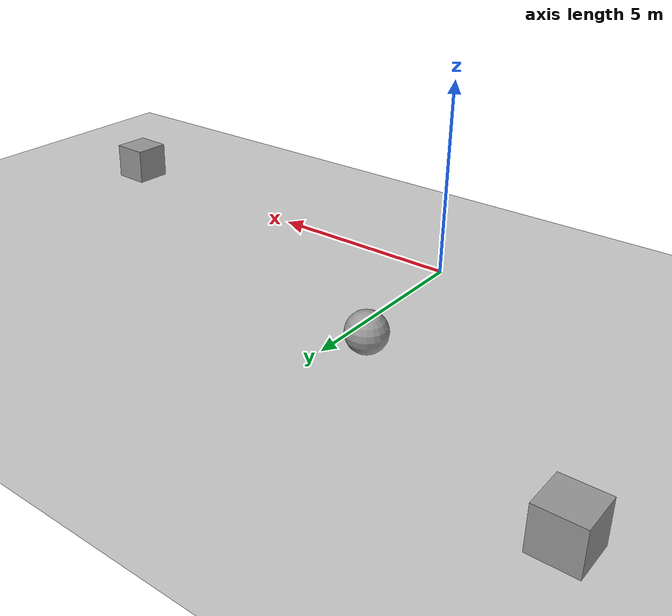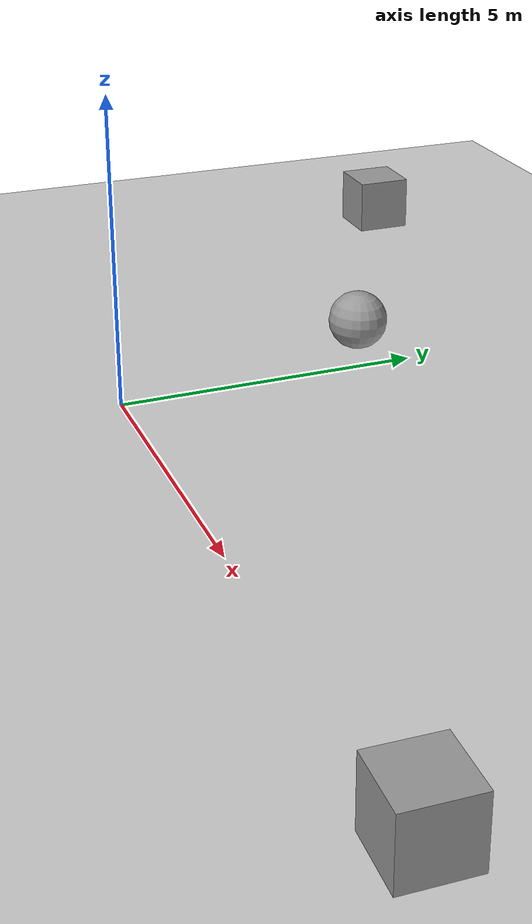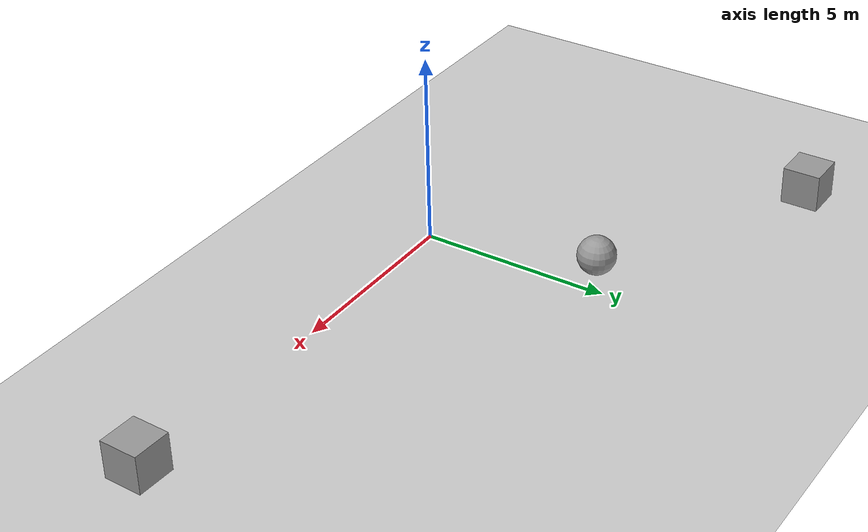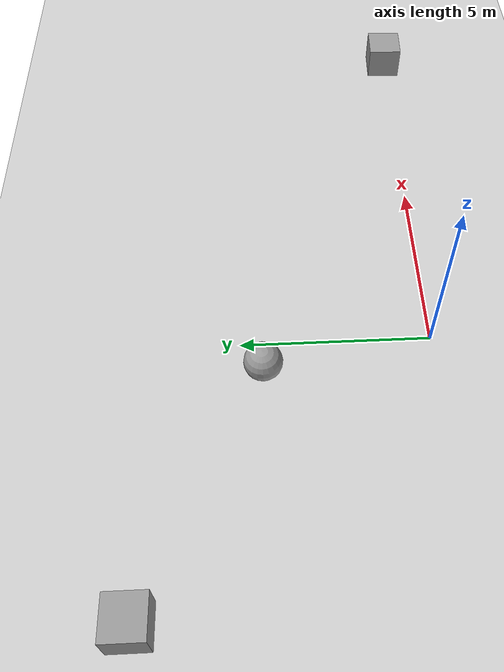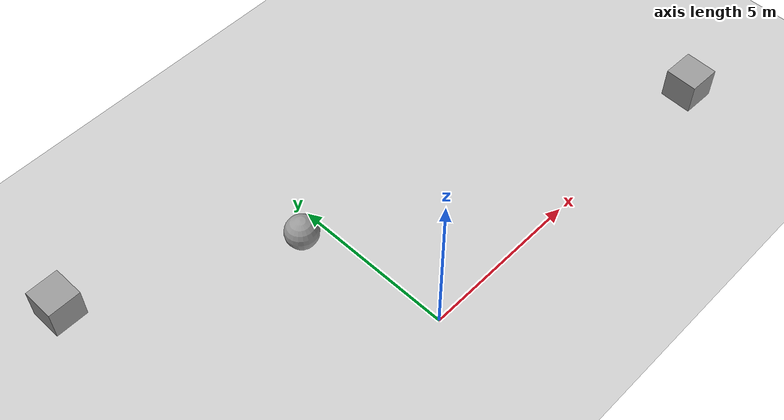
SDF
<sdf version="1.7">
 <world name="default">
  <light name="sun" type="directional">
   <pose>0 0 10 0 -0 0</pose>
   <diffuse>0.8 0.8 0.8 1</diffuse>
   <specular>0.2 0.2 0.2 1</specular>
   <attenuation>
    <range>1000</range>
    <constant>0.9</constant>
    <linear>0.01</linear>
    <quadratic>0.001</quadratic>
   </attenuation>
   <direction>-0.5 0.1 -0.9</direction>
   <spot><inner_angle>0</inner_angle><outer_angle>0</outer_angle><falloff>0</falloff></spot>
  </light>
  <model name="ground_plane">
   <static>1</static>
   <link name="link">
    <collision name="collision">
     <geometry><plane><normal>0 0 1</normal><size>100 100</size></plane></geometry>
     <surface><friction><ode><mu>100</mu><mu2>50</mu2></ode></friction></surface>
    </collision>
    <visual name="visual">
     <cast_shadows>0</cast_shadows>
     <geometry><plane><normal>0 0 1</normal><size>100 100</size></plane></geometry>
     <material>
      <script><uri>file://media/materials/scripts/gazebo.material</uri><name>Gazebo/Grey</name></script>
     </material>
    </visual>
   </link>
  </model>
  <gravity>0 0 -9.8</gravity>
  <magnetic_field>6e-06 2.3e-05 -4.2e-05</magnetic_field>
  <atmosphere type="adiabatic"/>
  <physics type="ode">
   <max_step_size>0.001</max_step_size>
   <real_time_factor>1</real_time_factor>
   <real_time_update_rate>1000</real_time_update_rate>
  </physics>
  <plugin name="gazebo_ros_init" filename="libgazebo_ros_init.so">
   <publish_rate>400</publish_rate>
   <publish_rate_bits>2</publish_rate_bits>
  </plugin>
  <scene><ambient>0.4 0.4 0.4 1</ambient><background>0.7 0.7 0.7 1</background><shadows>1</shadows></scene>
  <spherical_coordinates>
   <surface_model>EARTH_WGS84</surface_model>
   <latitude_deg>0</latitude_deg>
   <longitude_deg>0</longitude_deg>
   <elevation>0</elevation>
   <heading_deg>0</heading_deg>
  </spherical_coordinates>
  <model name="unit_box">
   <pose>11.0023 -0.007116 0.5 0 -0 -0.036613</pose>
   <link name="link">
    <inertial>
     <mass>1</mass>
     <inertia>
      <ixx>0.166667</ixx>
      <ixy>0</ixy>
      <ixz>0</ixz>
      <iyy>0.166667</iyy>
      <iyz>0</iyz>
      <izz>0.166667</izz>
     </inertia>
    </inertial>
    <collision name="collision"><geometry><box><size>1 1 1</size></box></geometry></collision>
    <visual name="visual">
     <geometry><box><size>1 1 1</size></box></geometry>
     <material>
      <script><name>Gazebo/Grey</name><uri>file://media/materials/scripts/gazebo.material</uri></script>
     </material>
    </visual>
   </link>
  </model>
  <model name="unit_sphere">
   <pose>-0.769943 4.40368 0.5 -0.042283 0 0</pose>
   <link name="link">
    <inertial>
     <mass>1</mass>
     <inertia><ixx>0.1</ixx><ixy>0</ixy><ixz>0</ixz><iyy>0.1</iyy><iyz>0</iyz><izz>0.1</izz></inertia>
    </inertial>
    <collision name="collision"><geometry><sphere><radius>0.5</radius></sphere></geometry></collision>
    <visual name="visual">
     <geometry><sphere><radius>0.5</radius></sphere></geometry>
     <material>
      <script><name>Gazebo/Grey</name><uri>file://media/materials/scripts/gazebo.material</uri></script>
     </material>
    </visual>
   </link>
  </model>
  <model name="unit_box_0">
   <pose>-6.75906 7.37019 0.5 -0 -0 -0.000221</pose>
   <link name="link">
    <inertial>
     <mass>1</mass>
     <inertia>
      <ixx>0.166667</ixx>
      <ixy>0</ixy>
      <ixz>0</ixz>
      <iyy>0.166667</iyy>
      <iyz>0</iyz>
      <izz>0.166667</izz>
     </inertia>
    </inertial>
    <collision name="collision"><geometry><box><size>1 1 1</size></box></geometry></collision>
    <visual name="visual">
     <geometry><box><size>1 1 1</size></box></geometry>
     <material>
      <script><name>Gazebo/Grey</name><uri>file://media/materials/scripts/gazebo.material</uri></script>
     </material>
    </visual>
   </link>
  </model>
 </world>
</sdf>
